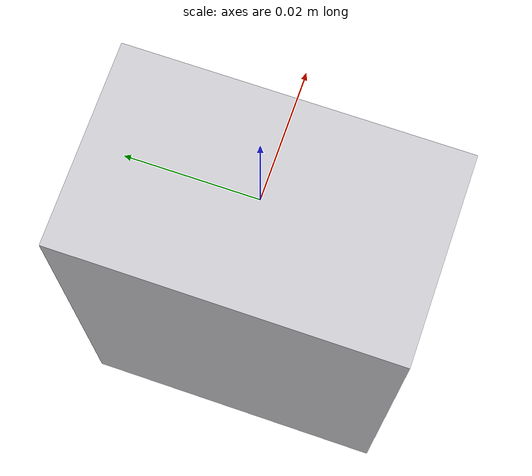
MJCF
<mujoco model="soma_pendulum_oracle">
  <option timestep="0.0005" integrator="RK4" gravity="0 0 -9.81"/>
  <worldbody>
    <body name="forearm" pos="0 0 0">
      <joint name="pivot" type="hinge" axis="0 1 0" damping="0"/>
      <geom name="link" type="box" pos="0 0 -0.0375"
            size="0.01595 0.0264 0.0375" mass="0.16" rgba="0.78 0.78 0.8 1"/>
    </body>
  </worldbody>
</mujoco>
